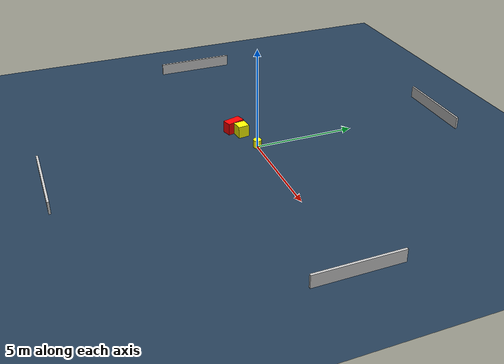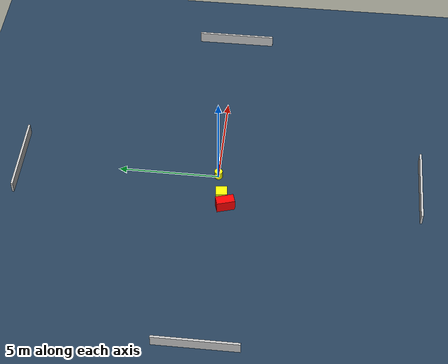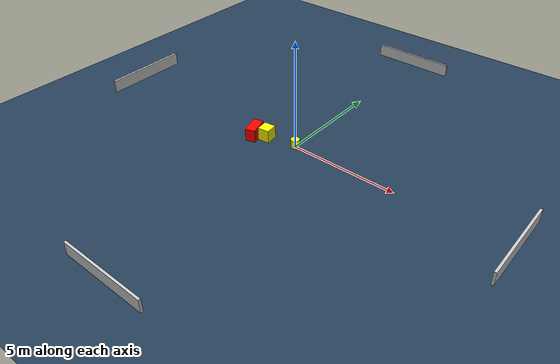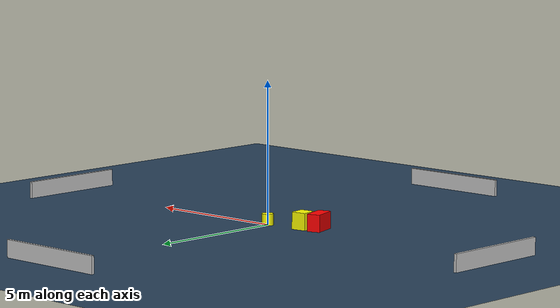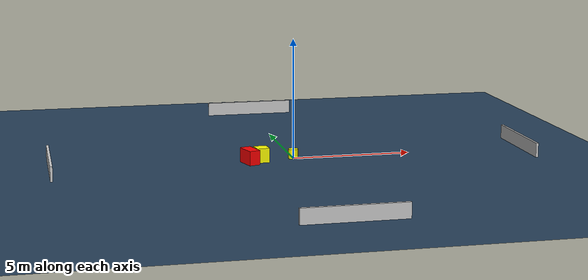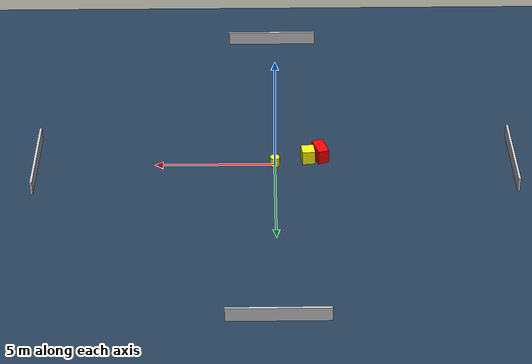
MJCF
<?xml version="1.0" ?>
<mujoco model="generated_environment">
  <option timestep="0.01" integrator="RK4" cone="elliptic"/>
  <default>
    <geom density="1"/>
  </default>
  <asset>
    <texture builtin="gradient" height="3072" name="skybox" rgb1="0.3 0.5 0.7" rgb2="0 0 0" type="skybox" width="512"/>
    <texture builtin="checker" height="300" name="groundplane" rgb1="0.2 0.3 0.4" rgb2="0.1 0.2 0.3" type="2d" width="300"/>
    <material name="groundplane" reflectance="0.2" texrepeat="5 5" texture="groundplane"/>
  </asset>
  <worldbody>
    <light dir="0 0 -1" directional="true" pos="0 0 1.5"/>
    <geom condim="3" friction="0.5 0.005 0.001" material="groundplane" name="floor" pos="0 0 0" size="0 0 0.05" type="plane"/>
    <body name="walls">
      <geom name="wall_1" condim="4" pos="-10.0 0.0 0.3" rgba="0.800000011920929 0.800000011920929 0.800000011920929 1.0" size="0.05 2.0 0.3" type="box"/>
      <geom name="wall_2" condim="4" pos="10.0 0.0 0.3" rgba="0.800000011920929 0.800000011920929 0.800000011920929 1.0" size="0.05 2.0 0.3" type="box"/>
      <geom name="wall_3" condim="4" pos="0.0 -10.0 0.3" rgba="0.800000011920929 0.800000011920929 0.800000011920929 1.0" size="2.0 0.05 0.3" type="box"/>
      <geom name="wall_4" condim="4" pos="0.0 10.0 0.3" rgba="0.800000011920929 0.800000011920929 0.800000011920929 1.0" size="2.0 0.05 0.3" type="box"/>
    </body>
    <body name="robot">
      <joint name="joint_x" type="slide" pos="0 0 0" axis="1 0 0"/>
      <joint name="joint_y" type="slide" pos="0 0 0" axis="0 1 0"/>
      <geom name="robot" type="cylinder" pos="0.0 0.0 0.2" size="0.2 0.2 0.0" mass="5.0" friction="1.0 0.005 0.0001" condim="4" rgba="1.0 1.0 0.0 1.0"/>
    </body>
    <body name="obstacle_1_movable">
      <geom name="obstacle_1_movable" condim="4" pos="-1.395165672255397 -0.2884785987871379 0.3" euler="0 0 96.03361665573419" friction="0.0 0.005 0.001" rgba="1.0 1.0 0.0 1.0" size="0.27864196919450374 0.2686384228569265 0.3" type="box" mass="0.1"/>
      <joint type="free"/>
    </body>
    <body name="obstacle_2_static">
      <geom name="obstacle_2_static" condim="4" pos="-1.924563788407913 -0.5113314836664591 0.3" euler="0 0 106.82872250361507" friction="0.0 0.005 0.001" rgba="1.0 0.0 0.0 1.0" size="0.44688617566462496 0.23263802970309 0.3" type="box"/>
    </body>
  </worldbody>
  <actuator>
    <motor name="actuator_x" joint="joint_x" gear="1" ctrlrange="-1 1"/>
    <motor name="actuator_y" joint="joint_y" gear="1" ctrlrange="-1 1"/>
  </actuator>
</mujoco>
